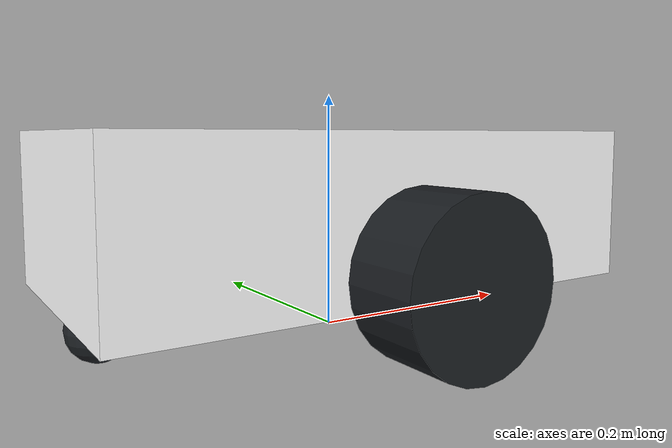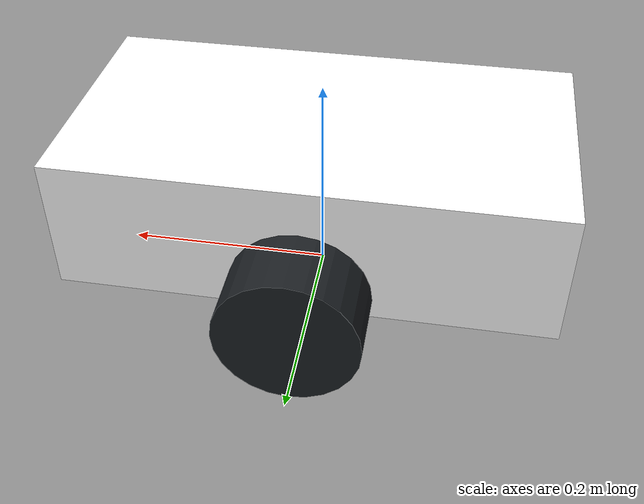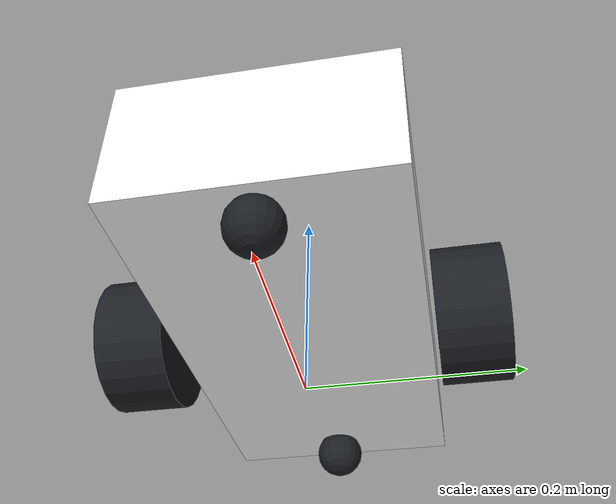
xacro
<?xml version="1.0"?>
<robot xmlns:xacro="http://www.ros.org/wiki/xacro"  >

    <xacro:include filename="inertial_macro.xacro"/>

<!--===== Defining all colours here =====-->
    <material name="Orange">
      <color rgba="0.5 0.2 0.0 1" />
    </material>
    <material name="Yellow">
      <color rgba="0.5 0.5 0.0 1" />
    </material>
    <material name="Red">
      <color rgba="0.5 0.0 0.0 1" />
    </material>
    <material name="Blue">
       <color rgba="0.0 0.0 0.4 1" />
     </material>
     <material name="Green">
       <color rgba="0.0 0.4 0.0 1" />
     </material>
     <material name="White">
     <color rgba="1 1 1 1" />
     </material>
     <material name="grey">
     <color rgba="0.108 0.122 0.137 1" />
     </material>

  <!--BASE FOOTPRINT-->
  <link name="base_footprint" />

<!--========================================== BASE JOINT ==========================================-->
    <joint name="base_joint" type="fixed">
    <origin xyz="0 0 0.04" rpy="0 0 0" />
    <parent link="base_footprint" />
    <child link="base_link" />
    </joint>

<!--========================================== BASE LINK ==========================================-->
    <link name="base_link">
        <xacro:inertial_box mass="5.0" x="0.46" y="0.240" z="0.130">
            <origin xyz="0 0 0.065" rpy="0 0 0"/>
        </xacro:inertial_box>
        <visual>
           <origin xyz="0 0 0.065" rpy="0 0 0" />
        <geometry>
            <box size="0.46 0.240 0.130"/>
        </geometry>
        <material name="White" />
        </visual>
        <collision>
            <origin xyz="0 0 0.065" rpy="0 0 0" />
            <geometry>
                <box size="0.46 0.240 0.130"/>
            </geometry>
        </collision>
    </link>

  <!--========================================== LEFT WHEEL JOINT ==========================================-->
    <joint name="wheel_left_joint" type="continuous">
        <origin xyz="0 0.158075 0.0255" rpy="-${pi/2} 0 0"/>
        <parent link="base_link" />
        <child link="wheel_left_link" />
        <axis xyz="0 0 1 " />
    </joint>
<!--========================================== LEFT WHEEL LINK ==========================================-->
    <link name="wheel_left_link">
        <xacro:inertial_cylinder mass="2.5" length="0.065" radius="0.065">
            <origin xyz="0 0 0" rpy="0 0 0"/>
        </xacro:inertial_cylinder>
        <visual>
            <origin xyz="0 0 0" rpy="0 0 0" />
            <geometry>
                <cylinder radius="0.065" length="0.065"/>
            </geometry>
            <material name="grey" />
        </visual>
        <collision>
            <origin xyz="0 0 0" rpy="0 0 0" />
            <geometry>
              <cylinder radius="0.065" length="0.065"/>
            </geometry>
          </collision>
    </link>

<!--========================================== right WHEEL JOINT ==========================================-->
    <joint name="wheel_right_joint" type="continuous">
        <origin xyz="0 -0.158075 0.0255" rpy="-${pi/2} 0 0"/>
        <parent link="base_link" />
        <child link="wheel_right_link" />
        <axis xyz="0 0 1 " />
    </joint>
<!--========================================== right WHEEL LINK ==========================================-->
    <link name="wheel_right_link">
        <xacro:inertial_cylinder mass="2.5" length="0.065" radius="0.065">
            <origin xyz="0 0 0" rpy="0 0 0"/>
        </xacro:inertial_cylinder>
        <visual>
            <origin xyz="0 0 0" rpy="0 0 0" />
            <geometry>
                <cylinder radius="0.065" length="0.065"/>
            </geometry>
            <material name="grey" />
        </visual>
        <collision>
            <origin xyz="0 0 0" rpy="0 0 0" />
            <geometry>
            <cylinder radius="0.065" length="0.065"/>
            </geometry>
        </collision>
    </link>

<!--============================================ FRONT CASTOR WHEEL JOINT ============================================-->
    <joint name="caster_front_link_joint" type="fixed">
        <origin xyz="0.2 0.0 -0.0145" rpy="0.0 0.0 0.0"/>
        <parent link="base_link" />
        <child link="caster_front_link" />
        <axis xyz="0 0 0" />
    </joint>
<!--=============================================== FRONT CASTOR WHEEL LINK ===============================================-->
    <link name="caster_front_link">
        <xacro:inertial_sphere mass="0.1" radius="0.025">
            <origin xyz="0 0 0" rpy="0 0 0"/>
        </xacro:inertial_sphere>
        <visual>
            <origin xyz="0 0 0" rpy="0 0 0" />
            <geometry>
                <sphere radius="0.025" />
            </geometry>
            <material name="grey" />
        </visual>
        <collision>
            <origin xyz="0 0 0" rpy="0 0 0" />
            <geometry>
            <sphere radius="0.025" />
            </geometry>
        </collision>
    </link>

<!--============================================ REAR CASTOR WHEEL JOINT ============================================-->
    <joint name="caster_rear_link_joint" type="fixed">
        <origin xyz="-0.2 0.0 -0.0145" rpy="0.0 0.0 0.0"/>
        <parent link="base_link" />
        <child link="caster_rear_link" />
        <axis xyz="0 0 0" />
    </joint>
<!--=============================================== REAR CASTOR WHEEL LINK ===============================================-->
    <link name="caster_rear_link">
        <xacro:inertial_sphere mass="0.1" radius="0.025">
            <origin xyz="0 0 0" rpy="0 0 0"/>
        </xacro:inertial_sphere>
        <visual>
            <origin xyz="0 0 0" rpy="0 0 0" />
            <geometry>
                <sphere radius="0.025" />
            </geometry>
            <material name="grey" />
        </visual>
        <collision>
            <origin xyz="0 0 0" rpy="0 0 0" />
            <geometry>
            <sphere radius="0.025" />
            </geometry>
        </collision>
    </link>

<!--=============================================== GAZEBO ROBOT COLOR ===============================================-->
    <gazebo reference="base_link">
        <material>Gazebo/White</material>
    </gazebo>
    <gazebo reference="wheel_left_link">
        <material>Gazebo/Grey</material>
    </gazebo>
    <gazebo reference="wheel_right_link">
        <material>Gazebo/Grey</material>
    </gazebo>
    <gazebo reference="caster_front_link">
        <material>Gazebo/Grey</material>
        <mu1 value="0.001"/>
        <mu2 value="0.001"/>
    </gazebo>
    <gazebo reference="caster_rear_link">
        <material>Gazebo/Grey</material>
        <mu1 value="0.001"/>
        <mu2 value="0.001"/>
    </gazebo>

</robot>
